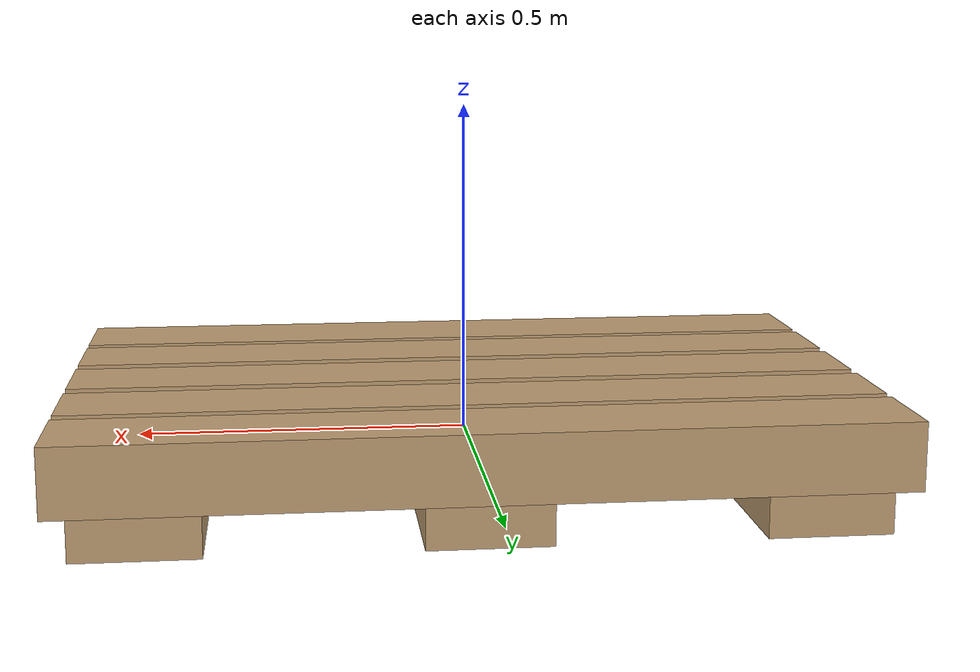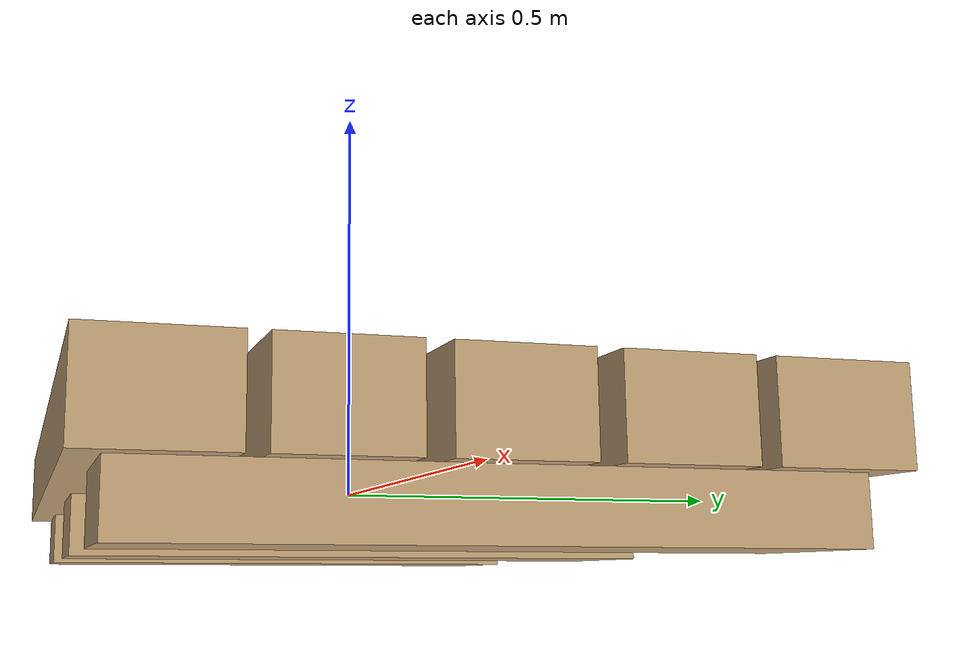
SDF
<?xml version="1.0"?>
<sdf version="1.9">
  <model name="pallet">
    <link name="link">
      <inertial><mass>12</mass></inertial>
      <collision name="collision">
        <geometry><box><size>1.2 0.8 0.18</size></box></geometry>
      </collision>
      <!-- Wood: ambientCG Wood049 (CC0). -->
      <visual name="top_1"><pose>0 -0.31 0.04 0 0 0</pose><geometry><box><size>1.2 0.14 0.10</size></box></geometry><material><diffuse>0.75 0.62 0.45 1</diffuse><pbr><metal><albedo_map>materials/textures/wood.png</albedo_map></metal></pbr><texrepeat>0.8 0.8</texrepeat></material></visual>
      <visual name="top_2"><pose>0 -0.155 0.04 0 0 0</pose><geometry><box><size>1.2 0.13 0.10</size></box></geometry><material><diffuse>0.75 0.62 0.45 1</diffuse><pbr><metal><albedo_map>materials/textures/wood.png</albedo_map></metal></pbr><texrepeat>0.8 0.8</texrepeat></material></visual>
      <visual name="top_3"><pose>0 0 0.04 0 0 0</pose><geometry><box><size>1.2 0.13 0.10</size></box></geometry><material><diffuse>0.75 0.62 0.45 1</diffuse><pbr><metal><albedo_map>materials/textures/wood.png</albedo_map></metal></pbr><texrepeat>0.8 0.8</texrepeat></material></visual>
      <visual name="top_4"><pose>0 0.155 0.04 0 0 0</pose><geometry><box><size>1.2 0.13 0.10</size></box></geometry><material><diffuse>0.75 0.62 0.45 1</diffuse><pbr><metal><albedo_map>materials/textures/wood.png</albedo_map></metal></pbr><texrepeat>0.8 0.8</texrepeat></material></visual>
      <visual name="top_5"><pose>0 0.31 0.04 0 0 0</pose><geometry><box><size>1.2 0.14 0.10</size></box></geometry><material><diffuse>0.75 0.62 0.45 1</diffuse><pbr><metal><albedo_map>materials/textures/wood.png</albedo_map></metal></pbr><texrepeat>0.8 0.8</texrepeat></material></visual>
      <visual name="block_left"><pose>-0.48 0 -0.045 0 0 0</pose><geometry><box><size>0.18 0.70 0.07</size></box></geometry><material><diffuse>0.75 0.62 0.45 1</diffuse><pbr><metal><albedo_map>materials/textures/wood.png</albedo_map></metal></pbr><texrepeat>0.8 0.8</texrepeat></material></visual>
      <visual name="block_middle"><pose>0 0 -0.045 0 0 0</pose><geometry><box><size>0.18 0.70 0.07</size></box></geometry><material><diffuse>0.75 0.62 0.45 1</diffuse><pbr><metal><albedo_map>materials/textures/wood.png</albedo_map></metal></pbr><texrepeat>0.8 0.8</texrepeat></material></visual>
      <visual name="block_right"><pose>0.48 0 -0.045 0 0 0</pose><geometry><box><size>0.18 0.70 0.07</size></box></geometry><material><diffuse>0.75 0.62 0.45 1</diffuse><pbr><metal><albedo_map>materials/textures/wood.png</albedo_map></metal></pbr><texrepeat>0.8 0.8</texrepeat></material></visual>
    </link>
  </model>
</sdf>
